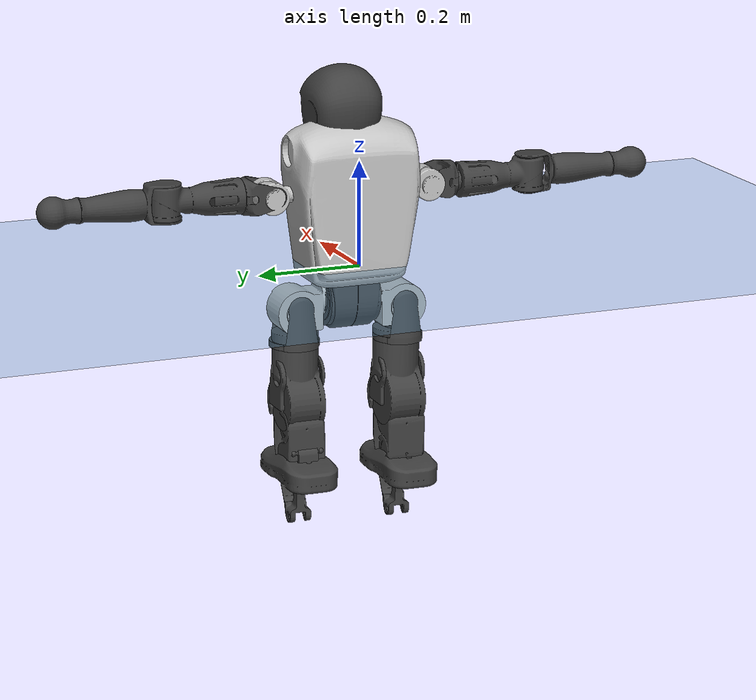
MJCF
<mujoco model="T1">
  <compiler angle="radian" assetdir="assets" balanceinertia="true" inertiafromgeom="false"/>

  <option timestep="0.005" density="1.2" viscosity="2e-05"/>

  <size nkey="1"/>

  <visual>
    <quality shadowsize="8192"/>
    <map shadowclip="0.5"/>
  </visual>

  <default>
    <default class="/">
      <joint armature="0.01" damping="0.01" frictionloss="0.1"/>
      <geom contype="0" conaffinity="0" group="1" solref="-1000 -80"/>
      <site size="0.01 0.005 0.005" group="5"/>
      <general forcelimited="true" biastype="affine" gainprm="25" biasprm="0 -25 -0.6"/>
      <default class="t1">
        <geom rgba="0.25 0.25 0.25 1"/>
        <default class="visual">
          <geom type="mesh" group="2"/>
        </default>
        <default class="collision">
          <geom group="3"/>
        </default>
        <default class="foot">
          <geom size="0.1115 0.05 0.015" type="box" condim="6" group="4" priority="1" solimp="0.015 1 0.015"/>
        </default>
        <default class="reward_collision_sphere">
          <geom group="5" rgba="1 0 0 1"/>
        </default>
      </default>
    </default>
  </default>

  <asset>
    <texture type="skybox" colorspace="auto" name="//unnamed_texture_0" builtin="gradient" rgb1="0.95 0.95 0.95" rgb2="0.95 0.95 0.95" width="100" height="600"/>
    <texture type="2d" colorspace="auto" name="texplane" builtin="checker" rgb1="0.345 0.575 0.748" rgb2="0.345 0.575 0.748" markrgb="1 1 1" width="512" height="512"/>
    <material name="MatPlane" class="/" texture="texplane" texuniform="true" texrepeat="2 2" specular="0.9"/>
    <mesh name="Trunk" class="/" file="Trunk.stl"/>
    <mesh name="H1" class="/" file="H1.stl"/>
    <mesh name="H2" class="/" file="H2.stl"/>
    <mesh name="AL1" class="/" file="AL1.stl"/>
    <mesh name="AL2" class="/" file="AL2.stl"/>
    <mesh name="AL3" class="/" file="AL3.stl"/>
    <mesh name="left_hand_link" class="/" file="left_hand_link.stl"/>
    <mesh name="AR1" class="/" file="AR1.stl"/>
    <mesh name="AR2" class="/" file="AR2.stl"/>
    <mesh name="AR3" class="/" file="AR3.stl"/>
    <mesh name="right_hand_link" class="/" file="right_hand_link.stl"/>
    <mesh name="Waist" class="/" file="Waist.stl"/>
    <mesh name="Hip_Pitch_Left" class="/" file="Hip_Pitch_Left.stl"/>
    <mesh name="Hip_Roll_Left" class="/" file="Hip_Roll_Left.stl"/>
    <mesh name="Hip_Yaw_Left" class="/" file="Hip_Yaw_Left.stl"/>
    <mesh name="Shank_Left" class="/" file="Shank_Left.stl"/>
    <mesh name="Ankle_Cross_Left" class="/" file="Ankle_Cross_Left.stl"/>
    <mesh name="left_foot_link" class="/" file="left_foot_link.stl"/>
    <mesh name="Hip_Pitch_Right" class="/" file="Hip_Pitch_Right.stl"/>
    <mesh name="Hip_Roll_Right" class="/" file="Hip_Roll_Right.stl"/>
    <mesh name="Hip_Yaw_Right" class="/" file="Hip_Yaw_Right.stl"/>
    <mesh name="Shank_Right" class="/" file="Shank_Right.stl"/>
    <mesh name="Ankle_Cross_Right" class="/" file="Ankle_Cross_Right.stl"/>
    <mesh name="right_foot_link" class="/" file="right_foot_link.stl"/>
  </asset>

  <worldbody>
    <geom name="floor" class="/" size="100 100 0.125" type="plane" group="0" material="MatPlane"/>
    <light name="toplight_shadow" class="/" pos="0 0 5" dir="0.0990148 0.0990148 -0.990148" type="directional" ambient="0.04 0.04 0.04" diffuse="0.55 0.55 0.55" specular="0.12 0.12 0.12"/>
    <light name="toplight_fill" class="/" pos="0 0 5" dir="0.0990148 0.0990148 -0.990148" type="directional" castshadow="false" ambient="0.04 0.04 0.04" diffuse="0.3 0.3 0.3" specular="0.08 0.08 0.08"/>
    <body name="trunk" childclass="t1" pos="-0.00149062 0.000262496 -0.00285586" quat="0.999999 0.000159167 -0.00111052 -6.3744e-05">
      <inertial pos="0.0552893 -0.00370495 0.063156" quat="0.999957 -0.0016774 -0.0091362 -0.00061249" mass="8.47666" diaginertia="0.098081 0.0875295 0.00533097"/>
      <joint name="//unnamed_joint_0" type="free" armature="0" damping="0" frictionloss="0"/>
      <geom name="//unnamed_geom_1" class="visual" rgba="0.76 0.76 0.76 1" mesh="Trunk"/>
      <geom name="//unnamed_geom_2" class="collision" size="0.0658774 0.0878366 0.131755" pos="0.0602923 0 0.0737389" type="box"/>
      <geom name="//unnamed_geom_3" class="reward_collision_sphere" size="0.101012" pos="0.0602923 0 0.0614491"/>
      <geom name="//unnamed_geom_4" class="reward_collision_sphere" size="0.0131755" pos="0.0602923 0.0863374 0"/>
      <geom name="//unnamed_geom_5" class="reward_collision_sphere" size="0.0131755" pos="0.0602923 -0.0863374 0"/>
      <geom name="//unnamed_geom_6" class="reward_collision_sphere" size="0.0131755" pos="0.0602923 0.108684 0.110608"/>
      <geom name="//unnamed_geom_7" class="reward_collision_sphere" size="0.0131755" pos="0.0602923 -0.108684 0.110608"/>
      <site name="imu" pos="-0.0306104 0.0207805 0.00532854" size="0.00878366"/>
      <camera name="track" pos="0 -2.03147 0" quat="0.707107 0.707107 0 0" mode="trackcom"/>
      <camera name="ego_camera" pos="0.122594 0 0.258086" quat="-0.5 -0.5 0.5 0.5"/>
      <body name="H1" pos="0.060926 0.000279965 0.148173" quat="1 -6.46124e-05 2.93749e-05 -8.1045e-05">
        <inertial pos="0.000621698 -0.00394966 0.0329343" quat="0.762181 -0.0220712 0.00538626 0.646965" mass="0.290384" diaginertia="0.000234445 0.000239815 1.24866e-05"/>
        <joint name="AAHead_yaw" pos="0 0 0" axis="-1.55321e-05 -5.93694e-06 1" range="-1.54999 1.55244" armature="0.00972953" damping="0.0133672" frictionloss="0.0785121"/>
        <geom name="//unnamed_geom_8" class="visual" mesh="H1"/>
        <body name="H2" pos="-0.000596717 0.00473052 0.0361654" quat="1 4.0141e-05 0.00015801 0.000167861">
          <inertial pos="0.00131355 -0.00397106 0.0592603" quat="0.987701 0.112895 -0.0710796 -0.0815459" mass="0.401387" diaginertia="0.00215385 0.00206411 0.00014865"/>
          <joint name="Head_pitch" pos="0 0 0" axis="0.00999048 -0.999937 0.00506355" range="-1.23401 0.322212" armature="0.0104598" damping="0.00659487" frictionloss="0.0865909"/>
          <geom name="//unnamed_geom_9" class="visual" mesh="H2"/>
          <geom name="//unnamed_geom_10" class="collision" size="0.0702693" pos="0.0100487 0 0.067594"/>
          <geom name="//unnamed_geom_11" class="reward_collision_sphere" size="0.0790529" pos="0.0200974 0 0.0614491"/>
        </body>
      </body>
      <body name="AL1" pos="0.0605263 0.110574 0.137519" quat="1 7.71114e-05 0.000685996 0.00032905">
        <inertial pos="0.000175806 0.0461309 -0.00489301" quat="0.504524 0.496026 -0.503829 0.495551" mass="0.349325" diaginertia="0.00136013 0.00140207 2.59906e-05"/>
        <joint name="Left_Shoulder_Pitch" pos="0 0 0" axis="0.00175915 0.99996 0.00881966" stiffness="0.0211899" range="-3.22058 1.24522" armature="0.00982635" damping="0.0178106" frictionloss="0.0912741"/>
        <geom name="//unnamed_geom_12" class="visual" rgba="0.76 0.76 0.76 1" mesh="AL1"/>
        <body name="AL2" pos="0.00435891 0.0433704 0.00238835" quat="0.999995 -0.00238359 -0.00186981 -0.000539308">
          <inertial pos="0.00511394 0.038169 0.00252875" quat="0.483494 0.514045 -0.480984 0.520236" mass="0.0931708" diaginertia="0.000375835 0.000337948 1.40644e-05"/>
          <joint name="Left_Shoulder_Roll" pos="0 0 0" axis="-0.999388 0.0203071 -0.0284692" stiffness="0.00189803" range="-1.55553 1.7391" armature="0.00887783" damping="0.0337872" frictionloss="0.0813976"/>
          <geom name="//unnamed_geom_13" class="visual" mesh="AL2"/>
          <body name="AL3" pos="0.00150039 0.0571447 0.00228356" quat="0.999994 0.0030925 -0.00040277 0.00125024">
            <inertial pos="0.00230119 0.0885451 0.000272196" quat="0.706461 0.707563 -0.0163023 -0.00139862" mass="0.651452" diaginertia="0.0121044 0.0132207 5.08514e-05"/>
            <joint name="Left_Elbow_Pitch" pos="0 0 0" axis="-0.00171316 -0.999997 -0.0018996" stiffness="0.0130492" range="-2.28479 2.2694" armature="0.00915495" damping="0.00746855" frictionloss="0.0893884"/>
            <geom name="//unnamed_geom_14" class="visual" mesh="AL3"/>
            <geom name="//unnamed_geom_15" class="collision" size="0.026351 0.0658774" pos="0 0.0507867 0" quat="0.707105 0.707108 0 0" type="cylinder"/>
            <geom name="//unnamed_geom_16" class="reward_collision_sphere" size="0.0316212"/>
            <body name="left_hand_link" pos="0.00318389 0.143646 -0.000830591" quat="0.999997 -0.00196417 0.00154839 0.000177876">
              <inertial pos="-0.00141481 0.110675 0.00492491" quat="0.710816 0.703065 0.0208884 0.00168654" mass="0.237838" diaginertia="0.00907321 0.00963064 2.0309e-05"/>
              <joint name="Left_Elbow_Yaw" pos="0 0 0" axis="0.0152336 -0.00906305 0.999843" range="-2.43863 -0.0585302" armature="0.0085308" damping="0.0137545" frictionloss="0.060991"/>
              <geom name="//unnamed_geom_17" class="visual" mesh="left_hand_link"/>
              <geom name="//unnamed_geom_18" class="collision" size="0.026351 0.076857" pos="0 0.132045 0" quat="0.707105 0.707108 0 0" type="cylinder"/>
              <geom name="//unnamed_geom_19" class="reward_collision_sphere" size="0.0439183"/>
              <geom name="//unnamed_geom_20" class="reward_collision_sphere" size="0.0307428" pos="0 0.111731 0"/>
              <geom name="//unnamed_geom_21" class="reward_collision_sphere" size="0.0307428" pos="0 0.218383 0"/>
            </body>
          </body>
        </body>
      </body>
      <body name="AR1" pos="0.0614942 -0.10971 0.13746" quat="0.999998 -0.000243936 0.00180509 -1.72366e-05">
        <inertial pos="0.000360747 -0.0479331 0.00279239" quat="0.501609 0.49021 -0.510346 0.497623" mass="0.351227" diaginertia="0.00138431 0.00132179 2.46361e-05"/>
        <joint name="Right_Shoulder_Pitch" pos="0 0 0" axis="0.00040866 -1 -0.000674072" range="-1.3279 3.25526" armature="0.00828603" damping="0" frictionloss="0.0914753"/>
        <geom name="//unnamed_geom_22" class="visual" rgba="0.76 0.76 0.76 1" mesh="AR1"/>
        <body name="AR2" pos="0.00490798 -0.0502751 0.0013838" quat="1 8.57113e-05 7.10314e-05 -5.01541e-05">
          <inertial pos="0.00423791 -0.0373051 0.00197028" quat="0.512841 0.48861 -0.510017 0.487993" mass="0.113483" diaginertia="0.000440872 0.00040966 1.5302e-05"/>
          <joint name="Right_Shoulder_Roll" pos="0 0 0" axis="-0.999992 0.000478689 -0.00388477" range="-1.73822 1.6715" armature="0.00903044" damping="0.0147307" frictionloss="0.10811"/>
          <geom name="//unnamed_geom_23" class="visual" mesh="AR2"/>
          <body name="AR3" pos="-6.8581e-05 -0.0675627 -0.00414005" quat="0.999999 -0.000647179 0.000807291 -0.00034072">
            <inertial pos="-6.22563e-05 -0.088761 -0.00154936" quat="0.695374 0.718067 0.0212628 0.0195645" mass="0.68326" diaginertia="0.0130469 0.0134987 5.2338e-05"/>
            <joint name="Right_Elbow_Pitch" pos="0 0 0" axis="-0.00471819 0.999987 -0.0017366" range="-2.26452 2.26478" armature="0.00766178" damping="0.0017125" frictionloss="0.0646161"/>
            <geom name="//unnamed_geom_24" class="visual" mesh="AR3"/>
            <geom name="//unnamed_geom_25" class="collision" size="0.026351 0.0658774" pos="0 -0.0507867 0" quat="0.707105 0.707108 0 0" type="cylinder"/>
            <geom name="//unnamed_geom_26" class="reward_collision_sphere" size="0.0316212"/>
            <body name="right_hand_link" pos="0.00410782 -0.151594 0.00183057" quat="1 -4.55688e-06 -2.85839e-05 -2.61932e-05">
              <inertial pos="0.00237974 -0.111269 -0.00443256" quat="0.713681 0.700193 0.0103719 0.0167658" mass="0.24492" diaginertia="0.0090927 0.00947107 2.03661e-05"/>
              <joint name="Right_Elbow_Yaw" pos="0 0 0" axis="0.0142214 0.00342674 0.999893" range="0.0569951 2.48337" armature="0.00588174" damping="0.0112138" frictionloss="0.087483"/>
              <geom name="//unnamed_geom_27" class="visual" mesh="right_hand_link"/>
              <geom name="//unnamed_geom_28" class="collision" size="0.026351 0.076857" pos="0 -0.132045 0" quat="0.707105 0.707108 0 0" type="cylinder"/>
              <geom name="//unnamed_geom_29" class="reward_collision_sphere" size="0.0439183"/>
              <geom name="//unnamed_geom_30" class="reward_collision_sphere" size="0.0307428" pos="0 -0.111731 0"/>
              <geom name="//unnamed_geom_31" class="reward_collision_sphere" size="0.0307428" pos="0 -0.218383 0"/>
            </body>
          </body>
        </body>
      </body>
      <body name="Waist" pos="0.0622567 0.00186501 -0.0680975" quat="1 -0.000441928 -0.00022142 -0.000353392">
        <inertial pos="-0.00293236 -0.00110633 0.00269136" quat="0.983075 0.00161151 -0.183147 0.00424519" mass="1.78341" diaginertia="0.00571056 0.00632139 0.000443883"/>
        <joint name="Waist" pos="0 0 0" axis="0.00784295 0.00154049 0.999968" range="-1.69547 1.58634" armature="0.0102163" damping="0.0169189" frictionloss="0.0781334"/>
        <geom name="//unnamed_geom_32" class="visual" mesh="Waist"/>
        <body name="Hip_Pitch_Left" pos="0.00482512 0.103626 0.000673679" quat="0.999997 0.0017771 0.00190099 0.000476909">
          <inertial pos="0.0017115 -0.0133539 -0.0107259" quat="0.9749 0.222179 0.0143291 0.000914818" mass="0.680227" diaginertia="0.00188399 0.00146561 0.000110757"/>
          <joint name="Left_Hip_Pitch" pos="0 0 0" axis="-0.011329 0.999829 -0.0145861" range="-1.79335 1.54671" armature="0.0086873" damping="0.0166945" frictionloss="0.0872898"/>
          <geom name="//unnamed_geom_33" class="visual" rgba="0.76 0.76 0.76 1" mesh="Hip_Pitch_Left"/>
          <body name="Hip_Roll_Left" pos="-0.000189903 0.000206397 -0.0119693" quat="0.999998 -0.000810778 0.00187783 -0.000191858">
            <inertial pos="0.00381369 -4.02408e-05 -0.0353706" quat="0.705379 -0.00488259 -0.00534027 0.708793" mass="0.261313" diaginertia="0.00176603 0.00174557 4.77506e-05"/>
            <joint name="Left_Hip_Roll" pos="0 0 0" axis="-0.99997 -0.0047323 -0.00620422" stiffness="0.00530573" range="-1.52298 0.165274" armature="0.0083985" damping="0" frictionloss="0.0751616"/>
            <geom name="//unnamed_geom_34" class="visual" mesh="Hip_Roll_Left"/>
            <geom name="//unnamed_geom_35" class="reward_collision_sphere" size="0.0483101"/>
            <body name="Hip_Yaw_Left" pos="-0.00227945 -0.000541259 -0.0472076" quat="1 -1.75239e-05 0.000588001 0.000105942">
              <inertial pos="-0.00455377 -0.00101378 -0.0570988" quat="0.700961 -0.00699703 -0.0194734 0.7129" mass="1.45737" diaginertia="0.0270801 0.0294219 0.000226295"/>
              <joint name="Left_Hip_Yaw" pos="0 0 0" axis="-0.0173632 0.0122966 -0.999774" stiffness="0.00640039" range="-0.992305 1.06632" armature="0.00854918" damping="0" frictionloss="0.0887422"/>
              <geom name="//unnamed_geom_36" class="visual" mesh="Hip_Yaw_Left"/>
              <geom name="//unnamed_geom_37" class="collision" size="0.0439183 0.0702693" type="cylinder"/>
              <body name="Shank_Left" pos="-0.0135766 -0.000192803 -0.0823372" quat="1 -4.96241e-05 3.666e-05 -3.35117e-05">
                <inertial pos="-0.00678939 0.00179654 -0.0751217" quat="0.997135 0.00270757 -0.0372553 0.0657754" mass="1.15535" diaginertia="0.0346436 0.035745 0.000158404"/>
                <joint name="Left_Knee_Pitch" pos="0 0 0" axis="-0.00792507 0.999965 -0.00285064" range="0.0221293 2.3598" armature="0.00959605" damping="0" frictionloss="0.0714231"/>
                <geom name="//unnamed_geom_38" class="visual" mesh="Shank_Left"/>
                <geom name="//unnamed_geom_39" class="collision" size="0.0439183 0.0658774" pos="0 0 -0.0737389" type="cylinder"/>
                <geom name="//unnamed_geom_40" class="reward_collision_sphere" size="0.0570938"/>
                <body name="Ankle_Cross_Left" pos="-0.00143452 0.000331117 -0.171247" quat="1 0.000334715 -0.00025638 -1.04669e-05">
                  <inertial pos="-0.00591105 -3.97255e-05 0.00142191" quat="0.443399 0.54544 0.552942 0.447378" mass="0.0481516" diaginertia="2.66714e-05 2.67096e-05 9.45281e-07"/>
                  <joint name="Left_Ankle_Pitch" pos="0 0 0" axis="0.000739548 0.999999 -0.000943099" range="-0.738896 0.33699" armature="0.00893126" damping="0.0186908" frictionloss="0.0698882"/>
                  <geom name="//unnamed_geom_41" class="visual" mesh="Ankle_Cross_Left"/>
                  <body name="left_foot_link" pos="-0.00454641 0.000238404 -0.00182467" quat="1 0.000244994 -0.000487336 -0.000442271">
                    <inertial pos="-0.00181688 0.00500954 -0.0032499" quat="-0.00347048 0.621675 -0.00314279 0.783261" mass="0.466754" diaginertia="0.00273405 0.00259028 0.000197813"/>
                    <joint name="Left_Ankle_Roll" pos="0 0 0" axis="-0.999954 0.00344782 -0.00899588" stiffness="0.00236836" range="-0.418505 0.4206" armature="0.00835849" damping="0" frictionloss="0.0978324"/>
                    <geom name="//unnamed_geom_42" class="visual" mesh="left_foot_link"/>
                    <geom name="left_foot" class="foot" size="0.106394 0.0332942 0.0133107" pos="0.0100487 0 -0.00921737"/>
                    <geom name="//unnamed_geom_44" class="reward_collision_sphere" size="0.045675" pos="0.0100487 0 -0.00921737"/>
                    <geom name="//unnamed_geom_45" class="reward_collision_sphere" size="0.026351" pos="0.0954628 -0.0233619 -0.00921737"/>
                    <geom name="//unnamed_geom_46" class="reward_collision_sphere" size="0.026351" pos="-0.070341 -0.0233619 -0.00921737"/>
                    <site name="left_foot" class="foot" pos="0.0100487 0 -0.00921737" size="0.00878366"/>
                  </body>
                </body>
              </body>
            </body>
          </body>
        </body>
        <body name="Hip_Pitch_Right" pos="0.000577945 -0.105081 -0.00409932" quat="1 4.8766e-07 -9.61751e-05 6.23428e-05">
          <inertial pos="0.00073304 0.00968723 -0.0160816" quat="0.971331 -0.236887 0.006574 -0.0189098" mass="0.712019" diaginertia="0.00189181 0.00163713 0.000108342"/>
          <joint name="Right_Hip_Pitch" pos="0 0 0" axis="-0.00805117 -0.999882 0.0130941" stiffness="3.34207e-05" range="-1.57076 1.82454" armature="0.00740299" damping="0" frictionloss="0.0861735"/>
          <geom name="//unnamed_geom_47" class="visual" rgba="0.76 0.76 0.76 1" mesh="Hip_Pitch_Right"/>
          <body name="Hip_Roll_Right" pos="-0.00127789 7.22021e-05 -0.0131123" quat="0.999995 0.00186252 -0.00182146 -0.00183239">
            <inertial pos="-0.00479839 0.00113208 -0.0313365" quat="0.716678 -0.00674088 -0.000380036 0.697371" mass="0.269351" diaginertia="0.00187754 0.00173309 4.59763e-05"/>
            <joint name="Right_Hip_Roll" pos="0 0 0" axis="-0.999991 0.00170951 -0.00380567" range="-0.183936 1.51321" armature="0.00962164" damping="0.0112008" frictionloss="0.089356"/>
            <geom name="//unnamed_geom_48" class="visual" mesh="Hip_Roll_Right"/>
            <geom name="//unnamed_geom_49" class="reward_collision_sphere" size="0.0483101"/>
            <body name="Hip_Yaw_Right" pos="0.0015962 0.00269984 -0.0533449" quat="0.999998 0.000295129 -0.000947238 -0.00193732">
              <inertial pos="-0.00776408 -0.00288914 -0.0535615" quat="0.711216 -0.0313731 -0.0284905 0.701695" mass="1.41425" diaginertia="0.0235478 0.0237721 0.000215488"/>
              <joint name="Right_Hip_Yaw" pos="0 0 0" axis="-0.00939473 -0.00322411 -0.999951" stiffness="0.0108284" range="-0.998899 1.12831" armature="0.00828637" damping="0.0152608" frictionloss="0.108199"/>
              <geom name="//unnamed_geom_50" class="visual" mesh="Hip_Yaw_Right"/>
              <geom name="//unnamed_geom_51" class="collision" size="0.0439183 0.0702693" type="cylinder"/>
              <body name="Shank_Right" pos="-0.00902252 -0.00166121 -0.0839563" quat="0.999997 0.00121747 0.00175105 -0.0008354">
                <inertial pos="-0.00999217 -0.000449128 -0.0782005" quat="0.999206 0.00136539 -0.0223168 -0.0329895" mass="1.08546" diaginertia="0.0359297 0.0384869 0.000172507"/>
                <joint name="Right_Knee_Pitch" pos="0 0 0" axis="-0.014844 -0.99987 -0.00630523" range="-2.38151 0.0219375" armature="0.00979486" damping="0.00556391" frictionloss="0.0911568"/>
                <geom name="//unnamed_geom_52" class="visual" mesh="Shank_Right"/>
                <geom name="//unnamed_geom_53" class="collision" size="0.0439183 0.0658774" pos="0 0 -0.0737389" type="cylinder"/>
                <geom name="//unnamed_geom_54" class="reward_collision_sphere" size="0.0570938"/>
                <body name="Ankle_Cross_Right" pos="0.00300241 -0.000872317 -0.170167" quat="0.999998 -0.000195838 -0.00197889 -0.000421018">
                  <inertial pos="-0.00408815 -0.000307237 -0.00413734" quat="0.444603 0.550571 0.553008 0.439751" mass="0.0533551" diaginertia="3.0472e-05 2.82699e-05 9.87904e-07"/>
                  <joint name="Right_Ankle_Pitch" pos="0 0 0" axis="0.0269277 -0.99947 -0.0183055" stiffness="0.0129383" range="-0.349574 0.909314" armature="0.0074851" damping="0.0139718" frictionloss="0.115441"/>
                  <geom name="//unnamed_geom_55" class="visual" mesh="Ankle_Cross_Right"/>
                  <body name="right_foot_link" pos="-0.00172341 -0.00313259 -0.0082985" quat="1 -0.000121368 4.74935e-05 -5.56222e-06">
                    <inertial pos="0.00190613 -0.00189217 -0.00176833" quat="0.00908209 0.627037 -0.000310652 0.778936" mass="0.449779" diaginertia="0.00285668 0.00268938 0.000192998"/>
                    <joint name="Right_Ankle_Roll" pos="0 0 0" axis="-0.999894 -0.00674046 -0.0129009" range="-0.568886 0.446337" armature="0.00993547" damping="0.01087" frictionloss="0.0970954"/>
                    <geom name="//unnamed_geom_56" class="visual" mesh="right_foot_link"/>
                    <geom name="right_foot" class="foot" size="0.120682 0.0352685 0.0119405" pos="0.0100487 0 -0.00921737"/>
                    <geom name="//unnamed_geom_58" class="reward_collision_sphere" size="0.0351346"/>
                    <geom name="//unnamed_geom_59" class="reward_collision_sphere" size="0.026351" pos="0.0100487 0 -0.00921737"/>
                    <geom name="//unnamed_geom_60" class="reward_collision_sphere" size="0.026351" pos="0.0954628 0.0233619 -0.00921737"/>
                    <geom name="//unnamed_geom_61" class="reward_collision_sphere" size="0.026351" pos="-0.070341 0.0233619 -0.00921737"/>
                    <site name="right_foot" class="foot" pos="0.0100487 0 -0.00921737" size="0.00878366"/>
                  </body>
                </body>
              </body>
            </body>
          </body>
        </body>
      </body>
    </body>
  </worldbody>

  <contact>
    <pair class="/" geom1="floor" geom2="left_foot" name="//unnamed_contact_0"/>
    <pair class="/" geom1="floor" geom2="right_foot" name="//unnamed_contact_1"/>
  </contact>

  <actuator>
    <general name="AAHead_yaw" class="/" joint="AAHead_yaw" forcerange="-6.06711 6.06711" gainprm="20.6922" biasprm="0 -20.6922 -0.552447"/>
    <general name="Head_pitch" class="/" joint="Head_pitch" forcerange="-6.68646 6.68646" gainprm="20.6922" biasprm="0 -20.6922 -0.552447"/>
    <general name="Left_Shoulder_Pitch" class="/" joint="Left_Shoulder_Pitch" forcerange="-15.4919 15.4919" gainprm="20.6922" biasprm="0 -20.6922 -0.552447"/>
    <general name="Left_Shoulder_Roll" class="/" joint="Left_Shoulder_Roll" forcerange="-15.6818 15.6818" gainprm="20.6922" biasprm="0 -20.6922 -0.552447"/>
    <general name="Left_Elbow_Pitch" class="/" joint="Left_Elbow_Pitch" forcerange="-13.7943 13.7943" gainprm="20.6922" biasprm="0 -20.6922 -0.552447"/>
    <general name="Left_Elbow_Yaw" class="/" joint="Left_Elbow_Yaw" forcerange="-14.4861 14.4861" gainprm="20.6922" biasprm="0 -20.6922 -0.552447"/>
    <general name="Right_Shoulder_Pitch" class="/" joint="Right_Shoulder_Pitch" forcerange="-15.097 15.097" gainprm="20.6922" biasprm="0 -20.6922 -0.552447"/>
    <general name="Right_Shoulder_Roll" class="/" joint="Right_Shoulder_Roll" forcerange="-16.0753 16.0753" gainprm="20.6922" biasprm="0 -20.6922 -0.552447"/>
    <general name="Right_Elbow_Pitch" class="/" joint="Right_Elbow_Pitch" forcerange="-14.769 14.769" gainprm="20.6922" biasprm="0 -20.6922 -0.552447"/>
    <general name="Right_Elbow_Yaw" class="/" joint="Right_Elbow_Yaw" forcerange="-13.5439 13.5439" gainprm="20.6922" biasprm="0 -20.6922 -0.552447"/>
    <general name="Waist" class="/" joint="Waist" forcerange="-27.0882 27.0882" gainprm="20.6922" biasprm="0 -20.6922 -0.552447"/>
    <general name="Left_Hip_Pitch" class="/" joint="Left_Hip_Pitch" forcerange="-48.8118 48.8118" gainprm="20.6922" biasprm="0 -20.6922 -0.552447"/>
    <general name="Left_Hip_Roll" class="/" joint="Left_Hip_Roll" forcerange="-28.8085 28.8085" gainprm="20.6922" biasprm="0 -20.6922 -0.552447"/>
    <general name="Left_Hip_Yaw" class="/" joint="Left_Hip_Yaw" forcerange="-28.1785 28.1785" gainprm="20.6922" biasprm="0 -20.6922 -0.552447"/>
    <general name="Left_Knee_Pitch" class="/" joint="Left_Knee_Pitch" forcerange="-44.6683 44.6683" gainprm="20.6922" biasprm="0 -20.6922 -0.552447"/>
    <general name="Left_Ankle_Pitch" class="/" joint="Left_Ankle_Pitch" forcerange="-19.1847 19.1847" gainprm="20.6922" biasprm="0 -20.6922 -0.552447"/>
    <general name="Left_Ankle_Roll" class="/" joint="Left_Ankle_Roll" forcerange="-13.6522 13.6522" gainprm="20.6922" biasprm="0 -20.6922 -0.552447"/>
    <general name="Right_Hip_Pitch" class="/" joint="Right_Hip_Pitch" forcerange="-31.7845 31.7845" gainprm="20.6922" biasprm="0 -20.6922 -0.552447"/>
    <general name="Right_Hip_Roll" class="/" joint="Right_Hip_Roll" forcerange="-28.6365 28.6365" gainprm="20.6922" biasprm="0 -20.6922 -0.552447"/>
    <general name="Right_Hip_Yaw" class="/" joint="Right_Hip_Yaw" forcerange="-28.1655 28.1655" gainprm="20.6922" biasprm="0 -20.6922 -0.552447"/>
    <general name="Right_Knee_Pitch" class="/" joint="Right_Knee_Pitch" forcerange="-50.6174 50.6174" gainprm="20.6922" biasprm="0 -20.6922 -0.552447"/>
    <general name="Right_Ankle_Pitch" class="/" joint="Right_Ankle_Pitch" forcerange="-17.2429 17.2429" gainprm="20.6922" biasprm="0 -20.6922 -0.552447"/>
    <general name="Right_Ankle_Roll" class="/" joint="Right_Ankle_Roll" forcerange="-15.7963 15.7963" gainprm="20.6922" biasprm="0 -20.6922 -0.552447"/>
  </actuator>

  <sensor>
    <gyro site="imu" name="imu_angular_velocity"/>
    <velocimeter site="imu" name="imu_linear_velocity"/>
    <framelinvel objtype="site" objname="left_foot" name="left_foot_global_linear_velocity"/>
    <framelinvel objtype="site" objname="right_foot" name="right_foot_global_linear_velocity"/>
  </sensor>

  <keyframe>
    <key name="home" qpos="0 0 0.6385 1 0 0 0 0 0 0 1.4 0 -0.4 0 -1.4 0 0.4 0 -0.4 0 0 0.8 -0.4 0 0.4 0 0 -0.8 0.4 0"/>
  </keyframe>
</mujoco>
